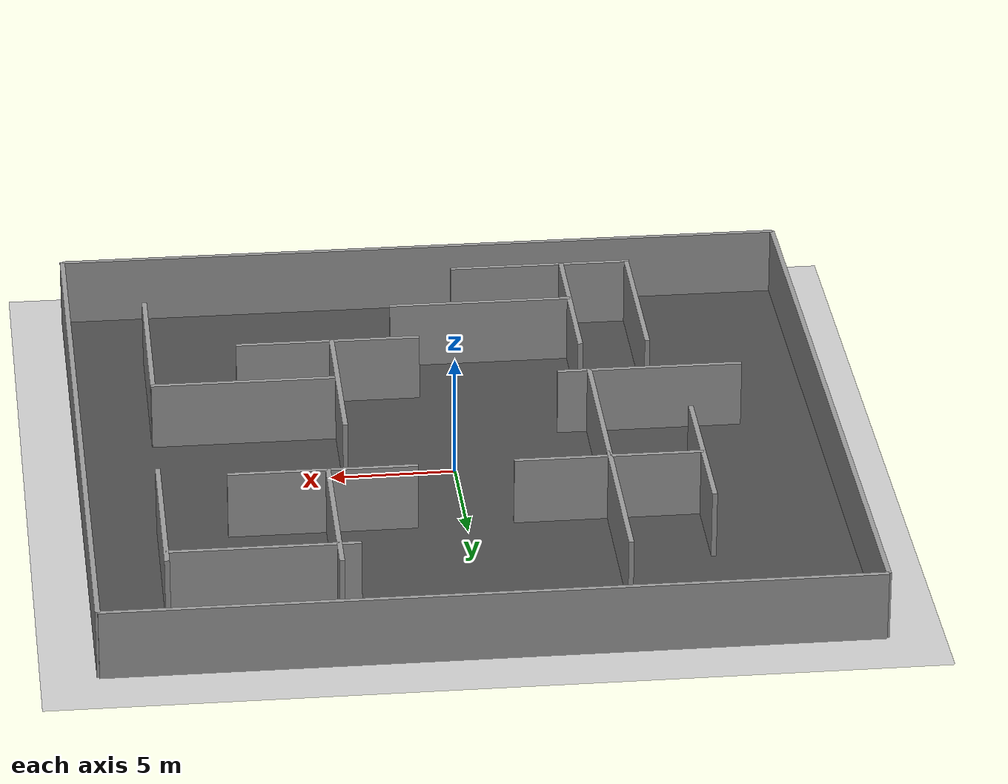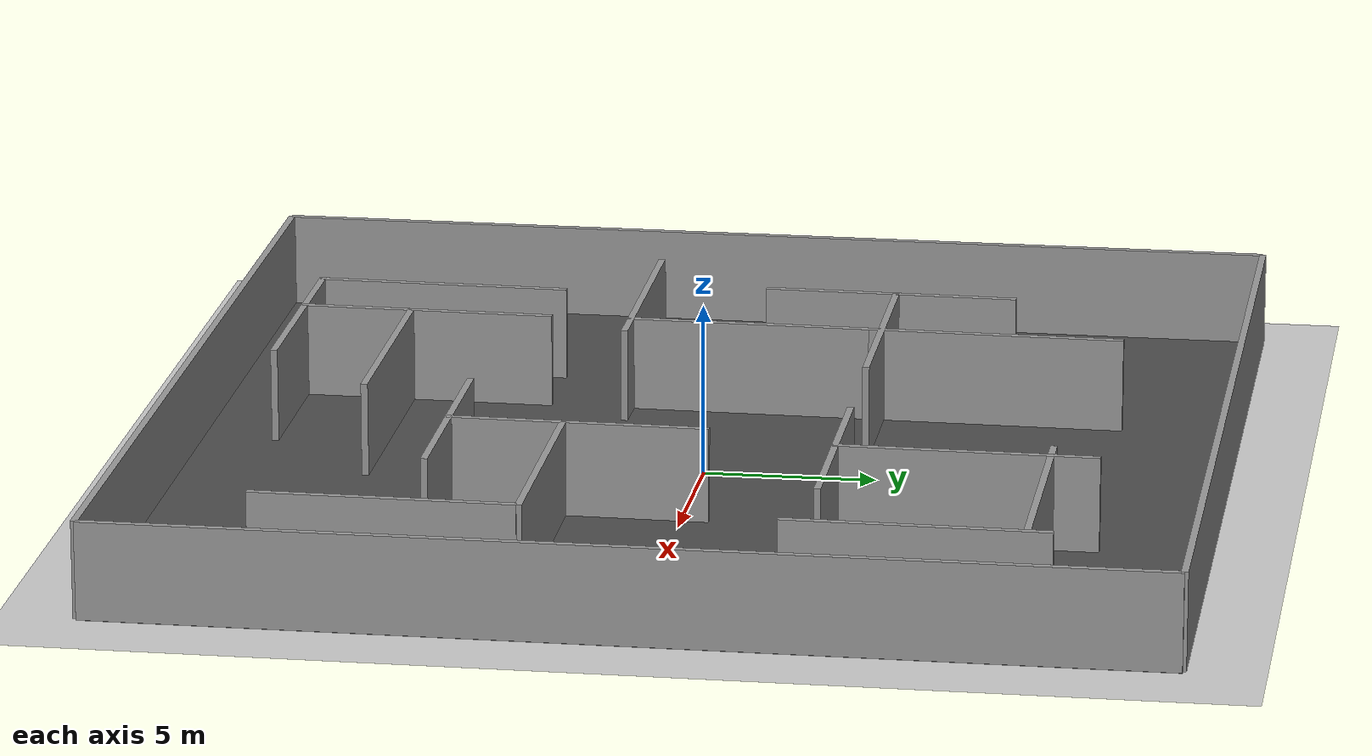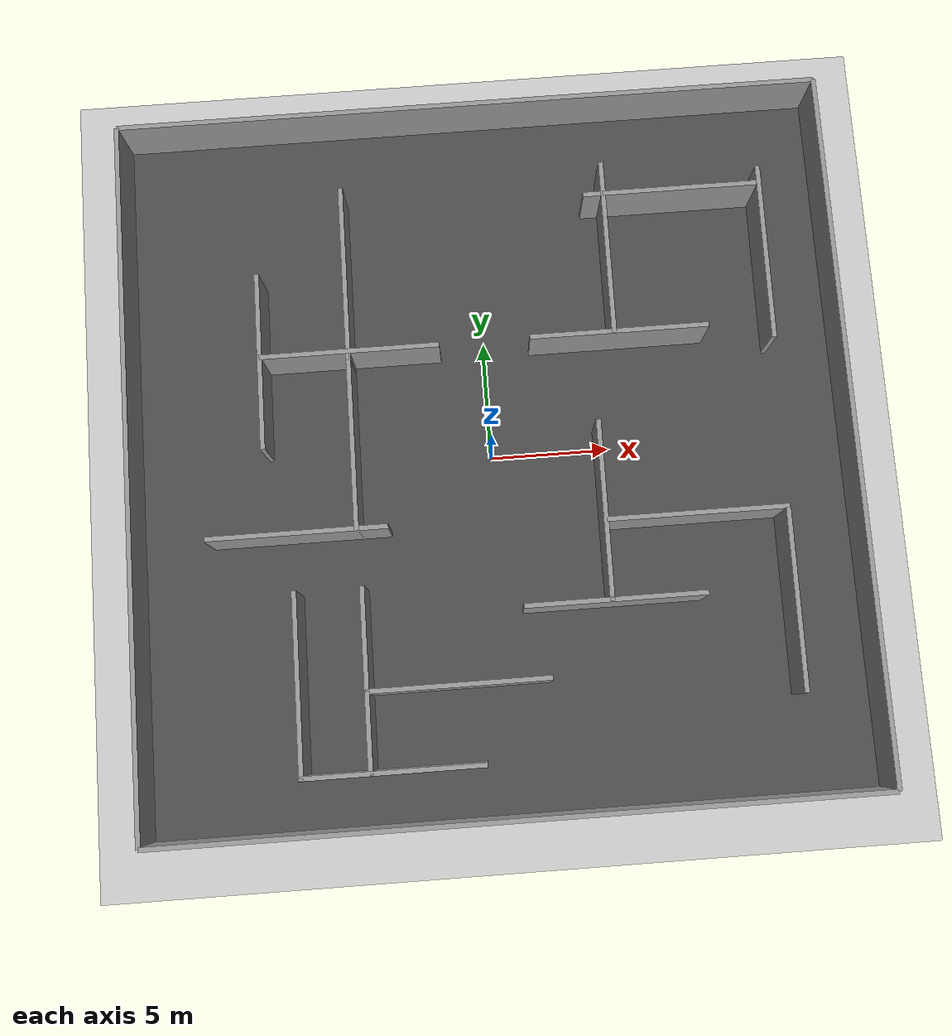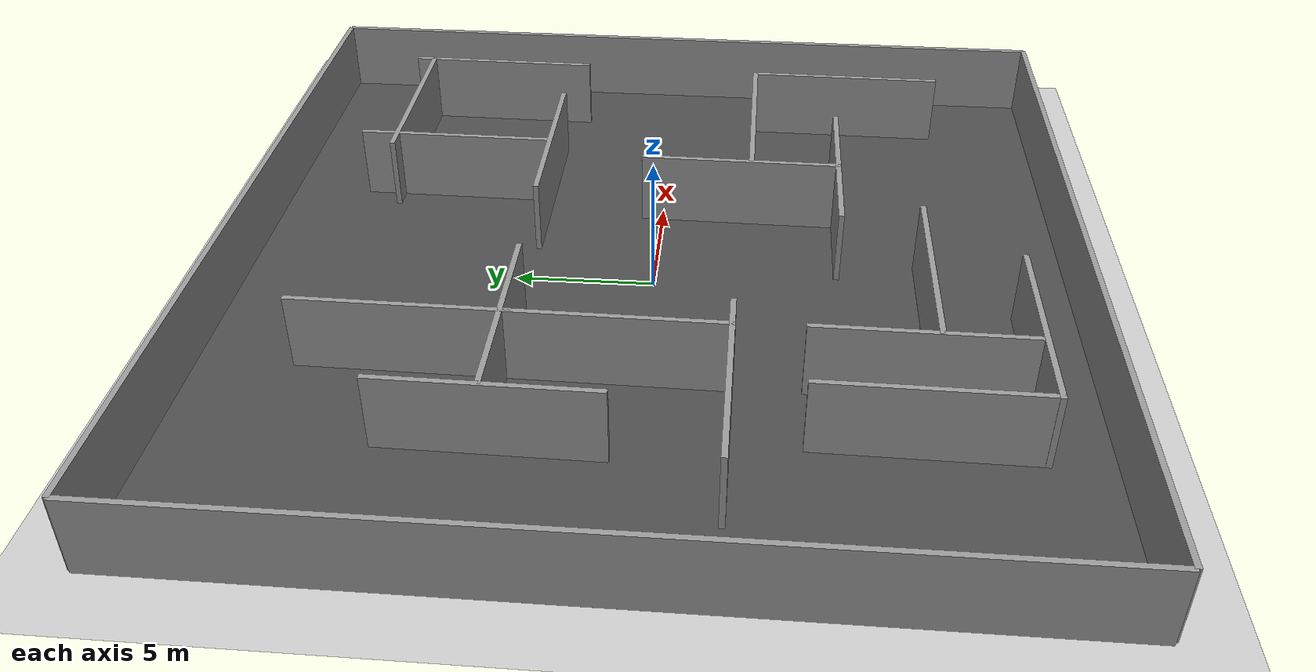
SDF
<sdf version="1.6">
 <world name="default">
  <light name="sun" type="directional">
   <pose>0 0 10 0 -0 0</pose>
   <diffuse>0.8 0.8 0.8 1</diffuse>
   <specular>0.2 0.2 0.2 1</specular>
   <attenuation>
    <range>1000</range>
    <constant>0.9</constant>
    <linear>0.01</linear>
    <quadratic>0.001</quadratic>
   </attenuation>
   <direction>-0.5 0.1 -0.9</direction>
  </light>
  <model name="ground_plane">
   <static>1</static>
   <link name="link">
    <collision name="collision">
     <geometry><plane><normal>0 0 1</normal><size>100 100</size></plane></geometry>
     <surface>
      <contact><collide_bitmask>65535</collide_bitmask></contact>
      <friction><ode><mu>100</mu><mu2>50</mu2></ode></friction>
     </surface>
    </collision>
    <visual name="visual">
     <cast_shadows>0</cast_shadows>
     <geometry><plane><normal>0 0 1</normal><size>100 100</size></plane></geometry>
     <material>
      <script><uri>file://media/materials/scripts/gazebo.material</uri><name>Gazebo/Grey</name></script>
     </material>
    </visual>
   </link>
  </model>
  <gravity>0 0 -9.8</gravity>
  <magnetic_field>6e-06 2.3e-05 -4.2e-05</magnetic_field>
  <atmosphere type="adiabatic"/>
  <physics name="default_physics" default="0" type="ode">
   <max_step_size>0.001</max_step_size>
   <real_time_factor>1</real_time_factor>
   <real_time_update_rate>1000</real_time_update_rate>
  </physics>
  <scene><ambient>0.4 0.4 0.4 1</ambient><background>0.7 0.7 0.7 1</background><shadows>1</shadows></scene>
  <spherical_coordinates>
   <surface_model>EARTH_WGS84</surface_model>
   <latitude_deg>0</latitude_deg>
   <longitude_deg>0</longitude_deg>
   <elevation>0</elevation>
   <heading_deg>0</heading_deg>
  </spherical_coordinates>
  <model name="asphalt_plane">
   <static>1</static>
   <link name="link">
    <collision name="collision"><geometry><box><size>30 30 0.1</size></box></geometry></collision>
    <visual name="visual">
     <cast_shadows>0</cast_shadows>
     <geometry><box><size>30 30 0.1</size></box></geometry>
     <material>
      <script>
       <uri>model://asphalt_plane/materials/scripts</uri>
       <uri>model://asphalt_plane/materials/textures</uri>
       <name>vrc/asphalt</name>
      </script>
     </material>
    </visual>
   </link>
  </model>
  <model name="wall_north">
   <static>1</static>
   <link name="link">
    <pose>0 0 1.4 0 -0 0</pose>
    <collision name="collision"><geometry><box><size>30 0.2 2.8</size></box></geometry></collision>
    <visual name="visual">
     <cast_shadows>0</cast_shadows>
     <geometry><box><size>30 0.2 2.8</size></box></geometry>
     <material>
      <script>
       <uri>model://grey_wall/materials/scripts</uri>
       <uri>model://grey_wall/materials/textures</uri>
       <name>vrc/grey_wall</name>
      </script>
     </material>
    </visual>
   </link>
   <pose>0 15 0 0 -0 0</pose>
  </model>
  <model name="wall_south">
   <static>1</static>
   <link name="link">
    <pose>0 0 1.4 0 -0 0</pose>
    <collision name="collision"><geometry><box><size>30 0.2 2.8</size></box></geometry></collision>
    <visual name="visual">
     <cast_shadows>0</cast_shadows>
     <geometry><box><size>30 0.2 2.8</size></box></geometry>
     <material>
      <script>
       <uri>model://grey_wall/materials/scripts</uri>
       <uri>model://grey_wall/materials/textures</uri>
       <name>vrc/grey_wall</name>
      </script>
     </material>
    </visual>
   </link>
   <pose>0 -15 0 0 -0 0</pose>
  </model>
  <model name="wall_east">
   <static>1</static>
   <link name="link">
    <pose>0 0 1.4 0 -0 0</pose>
    <collision name="collision"><geometry><box><size>30 0.2 2.8</size></box></geometry></collision>
    <visual name="visual">
     <cast_shadows>0</cast_shadows>
     <geometry><box><size>30 0.2 2.8</size></box></geometry>
     <material>
      <script>
       <uri>model://grey_wall/materials/scripts</uri>
       <uri>model://grey_wall/materials/textures</uri>
       <name>vrc/grey_wall</name>
      </script>
     </material>
    </visual>
   </link>
   <pose>15 0 0 0 -0 1.5708</pose>
  </model>
  <model name="wall_west">
   <static>1</static>
   <link name="link">
    <pose>0 0 1.4 0 -0 0</pose>
    <collision name="collision"><geometry><box><size>30 0.2 2.8</size></box></geometry></collision>
    <visual name="visual">
     <cast_shadows>0</cast_shadows>
     <geometry><box><size>30 0.2 2.8</size></box></geometry>
     <material>
      <script>
       <uri>model://grey_wall/materials/scripts</uri>
       <uri>model://grey_wall/materials/textures</uri>
       <name>vrc/grey_wall</name>
      </script>
     </material>
    </visual>
   </link>
   <pose>-15 0 0 0 -0 1.5708</pose>
  </model>
  <model name="grey_wall">
   <static>1</static>
   <link name="link">
    <pose>0 0 1.4 0 -0 0</pose>
    <collision name="collision"><geometry><box><size>7.5 0.2 2.8</size></box></geometry></collision>
    <visual name="visual">
     <cast_shadows>0</cast_shadows>
     <geometry><box><size>7.5 0.2 2.8</size></box></geometry>
     <material>
      <script>
       <uri>model://grey_wall/materials/scripts</uri>
       <uri>model://grey_wall/materials/textures</uri>
       <name>vrc/grey_wall</name>
      </script>
     </material>
    </visual>
   </link>
   <pose>-5.61561 4.46056 0 0 -0 0</pose>
  </model>
  <model name="grey_wall_0">
   <static>1</static>
   <link name="link">
    <pose>0 0 1.4 0 -0 0</pose>
    <collision name="collision"><geometry><box><size>7.5 0.2 2.8</size></box></geometry></collision>
    <visual name="visual">
     <cast_shadows>0</cast_shadows>
     <geometry><box><size>7.5 0.2 2.8</size></box></geometry>
     <material>
      <script>
       <uri>model://grey_wall/materials/scripts</uri>
       <uri>model://grey_wall/materials/textures</uri>
       <name>vrc/grey_wall</name>
      </script>
     </material>
    </visual>
   </link>
   <pose>5.67479 4.49564 0 0 -0 0</pose>
  </model>
  <model name="grey_wall_1">
   <static>1</static>
   <link name="link">
    <pose>0 0 1.4 0 -0 0</pose>
    <collision name="collision"><geometry><box><size>7.5 0.2 2.8</size></box></geometry></collision>
    <visual name="visual">
     <cast_shadows>0</cast_shadows>
     <geometry><box><size>7.5 0.2 2.8</size></box></geometry>
     <material>
      <script>
       <uri>model://grey_wall/materials/scripts</uri>
       <uri>model://grey_wall/materials/textures</uri>
       <name>vrc/grey_wall</name>
      </script>
     </material>
    </visual>
   </link>
   <pose>-5.71241 0.668927 0 0 -0 1.56038</pose>
  </model>
  <model name="grey_wall_1_clone">
   <static>1</static>
   <link name="link">
    <pose>0 0 1.4 0 -0 0</pose>
    <collision name="collision"><geometry><box><size>7.5 0.2 2.8</size></box></geometry></collision>
    <visual name="visual">
     <cast_shadows>0</cast_shadows>
     <geometry><box><size>7.5 0.2 2.8</size></box></geometry>
     <material>
      <script>
       <uri>model://grey_wall/materials/scripts</uri>
       <uri>model://grey_wall/materials/textures</uri>
       <name>vrc/grey_wall</name>
      </script>
     </material>
    </visual>
   </link>
   <pose>-5.63518 7.83851 0 0 -0 1.56038</pose>
  </model>
  <model name="grey_wall_1_clone_0">
   <static>1</static>
   <link name="link">
    <pose>0 0 1.4 0 -0 0</pose>
    <collision name="collision"><geometry><box><size>7.5 0.2 2.8</size></box></geometry></collision>
    <visual name="visual">
     <cast_shadows>0</cast_shadows>
     <geometry><box><size>7.5 0.2 2.8</size></box></geometry>
     <material>
      <script>
       <uri>model://grey_wall/materials/scripts</uri>
       <uri>model://grey_wall/materials/textures</uri>
       <name>vrc/grey_wall</name>
      </script>
     </material>
    </visual>
   </link>
   <pose>5.50145 8.17661 0 0 -0 1.56038</pose>
  </model>
  <model name="grey_wall_1_clone_1">
   <static>1</static>
   <link name="link">
    <pose>0 0 1.4 0 -0 0</pose>
    <collision name="collision"><geometry><box><size>7.5 0.2 2.8</size></box></geometry></collision>
    <visual name="visual">
     <cast_shadows>0</cast_shadows>
     <geometry><box><size>7.5 0.2 2.8</size></box></geometry>
     <material>
      <script>
       <uri>model://grey_wall/materials/scripts</uri>
       <uri>model://grey_wall/materials/textures</uri>
       <name>vrc/grey_wall</name>
      </script>
     </material>
    </visual>
   </link>
   <pose>4.43164 -2.94568 0 0 -0 1.56038</pose>
  </model>
  <model name="grey_wall_0_clone_clone">
   <static>1</static>
   <link name="link">
    <pose>0 0 1.4 0 -0 0</pose>
    <collision name="collision"><geometry><box><size>7.5 0.2 2.8</size></box></geometry></collision>
    <visual name="visual">
     <cast_shadows>0</cast_shadows>
     <geometry><box><size>7.5 0.2 2.8</size></box></geometry>
     <material>
      <script>
       <uri>model://grey_wall/materials/scripts</uri>
       <uri>model://grey_wall/materials/textures</uri>
       <name>vrc/grey_wall</name>
      </script>
     </material>
    </visual>
   </link>
   <pose>8.20301 -3.36585 0 0 -0 0</pose>
  </model>
  <model name="grey_wall_0_clone_clone_0">
   <static>1</static>
   <link name="link">
    <pose>0 0 1.4 0 -0 0</pose>
    <collision name="collision"><geometry><box><size>7.5 0.2 2.8</size></box></geometry></collision>
    <visual name="visual">
     <cast_shadows>0</cast_shadows>
     <geometry><box><size>7.5 0.2 2.8</size></box></geometry>
     <material>
      <script>
       <uri>model://grey_wall/materials/scripts</uri>
       <uri>model://grey_wall/materials/textures</uri>
       <name>vrc/grey_wall</name>
      </script>
     </material>
    </visual>
   </link>
   <pose>4.55708 -6.63079 0 0 -0 0</pose>
  </model>
  <model name="grey_wall_1_clone_1_clone">
   <static>1</static>
   <link name="link">
    <pose>0 0 1.4 0 -0 0</pose>
    <collision name="collision"><geometry><box><size>7.5 0.2 2.8</size></box></geometry></collision>
    <visual name="visual">
     <cast_shadows>0</cast_shadows>
     <geometry><box><size>7.5 0.2 2.8</size></box></geometry>
     <material>
      <script>
       <uri>model://grey_wall/materials/scripts</uri>
       <uri>model://grey_wall/materials/textures</uri>
       <name>vrc/grey_wall</name>
      </script>
     </material>
    </visual>
   </link>
   <pose>11.8399 -7.17098 0 0 -0 1.56038</pose>
  </model>
  <model name="grey_wall_1_clone_1_clone_0">
   <static>1</static>
   <link name="link">
    <pose>0 0 1.4 0 -0 0</pose>
    <collision name="collision"><geometry><box><size>7.5 0.2 2.8</size></box></geometry></collision>
    <visual name="visual">
     <cast_shadows>0</cast_shadows>
     <geometry><box><size>7.5 0.2 2.8</size></box></geometry>
     <material>
      <script>
       <uri>model://grey_wall/materials/scripts</uri>
       <uri>model://grey_wall/materials/textures</uri>
       <name>vrc/grey_wall</name>
      </script>
     </material>
    </visual>
   </link>
   <pose>-5.70771 -9.07672 0 0 -0 1.56038</pose>
  </model>
  <model name="grey_wall_0_clone_clone_0_clone">
   <static>1</static>
   <link name="link">
    <pose>0 0 1.4 0 -0 0</pose>
    <collision name="collision"><geometry><box><size>7.5 0.2 2.8</size></box></geometry></collision>
    <visual name="visual">
     <cast_shadows>0</cast_shadows>
     <geometry><box><size>7.5 0.2 2.8</size></box></geometry>
     <material>
      <script>
       <uri>model://grey_wall/materials/scripts</uri>
       <uri>model://grey_wall/materials/textures</uri>
       <name>vrc/grey_wall</name>
      </script>
     </material>
    </visual>
   </link>
   <pose>-4.85628 -12.7698 0 0 -0 0</pose>
  </model>
  <model name="grey_wall_0_clone_clone_0_clone_0">
   <static>1</static>
   <link name="link">
    <pose>0 0 1.4 0 -0 0</pose>
    <collision name="collision"><geometry><box><size>7.5 0.2 2.8</size></box></geometry></collision>
    <visual name="visual">
     <cast_shadows>0</cast_shadows>
     <geometry><box><size>7.5 0.2 2.8</size></box></geometry>
     <material>
      <script>
       <uri>model://grey_wall/materials/scripts</uri>
       <uri>model://grey_wall/materials/textures</uri>
       <name>vrc/grey_wall</name>
      </script>
     </material>
    </visual>
   </link>
   <pose>-1.99951 -9.56137 0 0 -0 0</pose>
  </model>
  <model name="grey_wall_0_clone_0">
   <static>1</static>
   <link name="link">
    <pose>0 0 1.4 0 -0 0</pose>
    <collision name="collision"><geometry><box><size>7.5 0.2 2.8</size></box></geometry></collision>
    <visual name="visual">
     <cast_shadows>0</cast_shadows>
     <geometry><box><size>7.5 0.2 2.8</size></box></geometry>
     <material>
      <script>
       <uri>model://grey_wall/materials/scripts</uri>
       <uri>model://grey_wall/materials/textures</uri>
       <name>vrc/grey_wall</name>
      </script>
     </material>
    </visual>
   </link>
   <pose>8.42647 10.537 0 0 -0 0</pose>
  </model>
  <model name="grey_wall_1_clone_0_clone">
   <static>1</static>
   <link name="link">
    <pose>0 0 1.4 0 -0 0</pose>
    <collision name="collision"><geometry><box><size>7.5 0.2 2.8</size></box></geometry></collision>
    <visual name="visual">
     <cast_shadows>0</cast_shadows>
     <geometry><box><size>7.5 0.2 2.8</size></box></geometry>
     <material>
      <script>
       <uri>model://grey_wall/materials/scripts</uri>
       <uri>model://grey_wall/materials/textures</uri>
       <name>vrc/grey_wall</name>
      </script>
     </material>
    </visual>
   </link>
   <pose>12.1374 7.50819 -0 0 -0 1.56038</pose>
  </model>
  <model name="grey_wall_1_clone_1_clone_0_clone">
   <static>1</static>
   <link name="link">
    <pose>0 0 1.4 0 -0 0</pose>
    <collision name="collision"><geometry><box><size>7.5 0.2 2.8</size></box></geometry></collision>
    <visual name="visual">
     <cast_shadows>0</cast_shadows>
     <geometry><box><size>7.5 0.2 2.8</size></box></geometry>
     <material>
      <script>
       <uri>model://grey_wall/materials/scripts</uri>
       <uri>model://grey_wall/materials/textures</uri>
       <name>vrc/grey_wall</name>
      </script>
     </material>
    </visual>
   </link>
   <pose>-8.46054 -9.08807 0 0 -0 1.56038</pose>
  </model>
  <model name="grey_wall_clone">
   <static>1</static>
   <link name="link">
    <pose>0 0 1.4 0 -0 0</pose>
    <collision name="collision"><geometry><box><size>7.5 0.2 2.8</size></box></geometry></collision>
    <visual name="visual">
     <cast_shadows>0</cast_shadows>
     <geometry><box><size>7.5 0.2 2.8</size></box></geometry>
     <material>
      <script>
       <uri>model://grey_wall/materials/scripts</uri>
       <uri>model://grey_wall/materials/textures</uri>
       <name>vrc/grey_wall</name>
      </script>
     </material>
    </visual>
   </link>
   <pose>-8.20016 -2.98184 0 0 -0 0</pose>
  </model>
  <model name="grey_wall_1_clone_clone">
   <static>1</static>
   <link name="link">
    <pose>0 0 1.4 0 -0 0</pose>
    <collision name="collision"><geometry><box><size>7.5 0.2 2.8</size></box></geometry></collision>
    <visual name="visual">
     <cast_shadows>0</cast_shadows>
     <geometry><box><size>7.5 0.2 2.8</size></box></geometry>
     <material>
      <script>
       <uri>model://grey_wall/materials/scripts</uri>
       <uri>model://grey_wall/materials/textures</uri>
       <name>vrc/grey_wall</name>
      </script>
     </material>
    </visual>
   </link>
   <pose>-9.35678 4.3085 0 0 -0 1.56038</pose>
  </model>
 </world>
</sdf>
